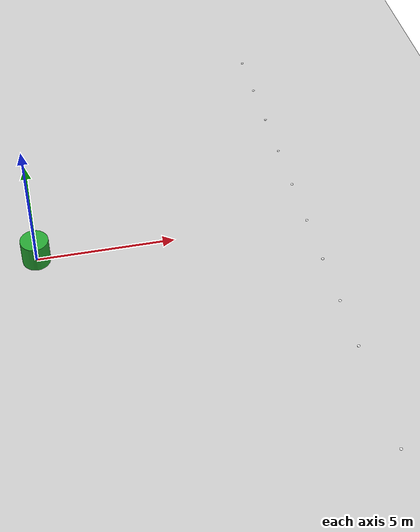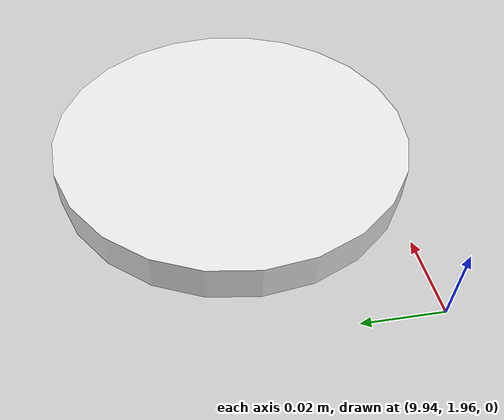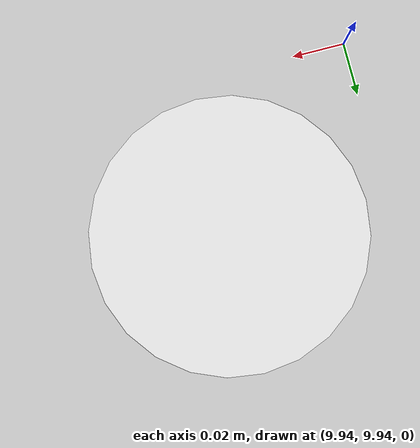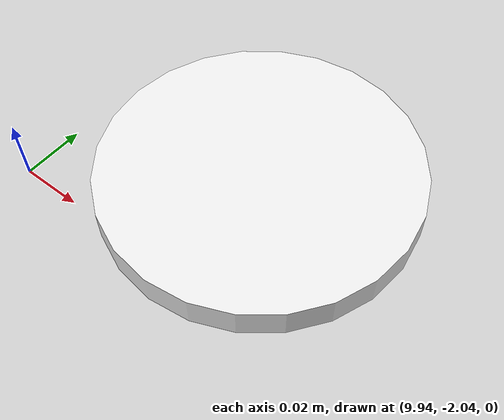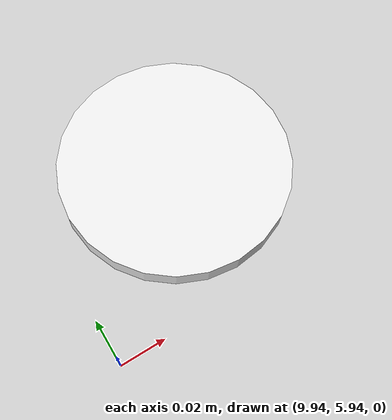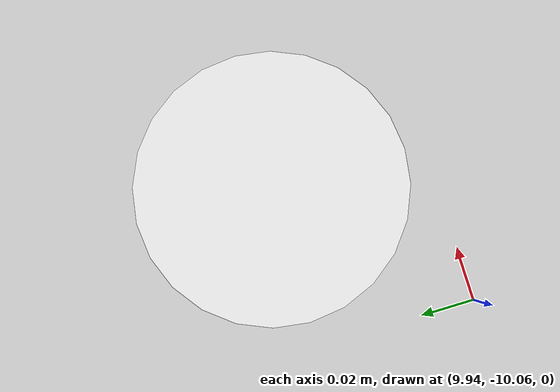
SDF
<?xml version="1.0" ?>
<sdf version="1.4">
  <world name="default">
    <!-- A global light source -->
    <include>
      <uri>model://sun</uri>
    </include>
    <!-- A ground plane -->
    <include>
      <uri>model://ground_plane</uri>
    </include>
    <!-- Own physics settings to speed up simulation -->
    <physics type='ode'>
      <max_step_size>0.01</max_step_size>
      <gravity>0 0 -9.8</gravity>
    </physics>

		<model name='obs_point_goal0'>
			<pose>10 10 0.005 0 0 0</pose>
			<link name='link'>
				<inertial>
					<mass>1</mass>
				</inertial>
				<visual name='visual'>
					<geometry>
						<cylinder>
								<radius>0.05</radius>
								<length>0.01</length>
						</cylinder>
					</geometry>
					<material>
						<script>
							<uri>file://media/materials/scripts/gazebo.material</uri>
							<name>Gazebo/White</name>
						</script>
					</material>
				</visual>
				<velocity_decay>
					<linear>0</linear>
					<angular>0</angular>
				</velocity_decay>
				<self_collide>0</self_collide>
				<kinematic>0</kinematic>
				<gravity>0</gravity>
			</link>
		</model>

		<model name='obs_point_goal1'>
			<pose>10 8 0.005 0 0 0</pose>
			<link name='link'>
				<inertial>
					<mass>1</mass>
				</inertial>
				<visual name='visual'>
					<geometry>
						<cylinder>
								<radius>0.05</radius>
								<length>0.01</length>
						</cylinder>
					</geometry>
					<material>
						<script>
							<uri>file://media/materials/scripts/gazebo.material</uri>
							<name>Gazebo/White</name>
						</script>
					</material>
				</visual>
				<velocity_decay>
					<linear>0</linear>
					<angular>0</angular>
				</velocity_decay>
				<self_collide>0</self_collide>
				<kinematic>0</kinematic>
				<gravity>0</gravity>
			</link>
		</model>

		<model name='obs_point_goal2'>
			<pose>10 6 0.005 0 0 0</pose>
			<link name='link'>
				<inertial>
					<mass>1</mass>
				</inertial>
				<visual name='visual'>
					<geometry>
						<cylinder>
								<radius>0.05</radius>
								<length>0.01</length>
						</cylinder>
					</geometry>
					<material>
						<script>
							<uri>file://media/materials/scripts/gazebo.material</uri>
							<name>Gazebo/White</name>
						</script>
					</material>
				</visual>
				<velocity_decay>
					<linear>0</linear>
					<angular>0</angular>
				</velocity_decay>
				<self_collide>0</self_collide>
				<kinematic>0</kinematic>
				<gravity>0</gravity>
			</link>
		</model>

		<model name='obs_point_goal3'>
			<pose>10 4 0.005 0 0 0</pose>
			<link name='link'>
				<inertial>
					<mass>1</mass>
				</inertial>
				<visual name='visual'>
					<geometry>
						<cylinder>
								<radius>0.05</radius>
								<length>0.01</length>
						</cylinder>
					</geometry>
					<material>
						<script>
							<uri>file://media/materials/scripts/gazebo.material</uri>
							<name>Gazebo/White</name>
						</script>
					</material>
				</visual>
				<velocity_decay>
					<linear>0</linear>
					<angular>0</angular>
				</velocity_decay>
				<self_collide>0</self_collide>
				<kinematic>0</kinematic>
				<gravity>0</gravity>
			</link>
		</model>

		<model name='obs_point_goal4'>
			<pose>10 2 0.005 0 0 0</pose>
			<link name='link'>
				<inertial>
					<mass>1</mass>
				</inertial>
				<visual name='visual'>
					<geometry>
						<cylinder>
								<radius>0.05</radius>
								<length>0.01</length>
						</cylinder>
					</geometry>
					<material>
						<script>
							<uri>file://media/materials/scripts/gazebo.material</uri>
							<name>Gazebo/White</name>
						</script>
					</material>
				</visual>
				<velocity_decay>
					<linear>0</linear>
					<angular>0</angular>
				</velocity_decay>
				<self_collide>0</self_collide>
				<kinematic>0</kinematic>
				<gravity>0</gravity>
			</link>
		</model>

		<model name='obs_point_goal5'>
			<pose>10 0 0.005 0 0 0</pose>
			<link name='link'>
				<inertial>
					<mass>1</mass>
				</inertial>
				<visual name='visual'>
					<geometry>
						<cylinder>
								<radius>0.05</radius>
								<length>0.01</length>
						</cylinder>
					</geometry>
					<material>
						<script>
							<uri>file://media/materials/scripts/gazebo.material</uri>
							<name>Gazebo/White</name>
						</script>
					</material>
				</visual>
				<velocity_decay>
					<linear>0</linear>
					<angular>0</angular>
				</velocity_decay>
				<self_collide>0</self_collide>
				<kinematic>0</kinematic>
				<gravity>0</gravity>
			</link>
		</model>

		<model name='obs_point_goal6'>
			<pose>10 -2 0.005 0 0 0</pose>
			<link name='link'>
				<inertial>
					<mass>1</mass>
				</inertial>
				<visual name='visual'>
					<geometry>
						<cylinder>
								<radius>0.05</radius>
								<length>0.01</length>
						</cylinder>
					</geometry>
					<material>
						<script>
							<uri>file://media/materials/scripts/gazebo.material</uri>
							<name>Gazebo/White</name>
						</script>
					</material>
				</visual>
				<velocity_decay>
					<linear>0</linear>
					<angular>0</angular>
				</velocity_decay>
				<self_collide>0</self_collide>
				<kinematic>0</kinematic>
				<gravity>0</gravity>
			</link>
		</model>

		<model name='obs_point_goal7'>
			<pose>10 -4 0.005 0 0 0</pose>
			<link name='link'>
				<inertial>
					<mass>1</mass>
				</inertial>
				<visual name='visual'>
					<geometry>
						<cylinder>
								<radius>0.05</radius>
								<length>0.01</length>
						</cylinder>
					</geometry>
					<material>
						<script>
							<uri>file://media/materials/scripts/gazebo.material</uri>
							<name>Gazebo/White</name>
						</script>
					</material>
				</visual>
				<velocity_decay>
					<linear>0</linear>
					<angular>0</angular>
				</velocity_decay>
				<self_collide>0</self_collide>
				<kinematic>0</kinematic>
				<gravity>0</gravity>
			</link>
		</model>

		<model name='obs_point_goal8'>
			<pose>10 -6 0.005 0 0 0</pose>
			<link name='link'>
				<inertial>
					<mass>1</mass>
				</inertial>
				<visual name='visual'>
					<geometry>
						<cylinder>
								<radius>0.05</radius>
								<length>0.01</length>
						</cylinder>
					</geometry>
					<material>
						<script>
							<uri>file://media/materials/scripts/gazebo.material</uri>
							<name>Gazebo/White</name>
						</script>
					</material>
				</visual>
				<velocity_decay>
					<linear>0</linear>
					<angular>0</angular>
				</velocity_decay>
				<self_collide>0</self_collide>
				<kinematic>0</kinematic>
				<gravity>0</gravity>
			</link>
		</model>

		<model name='obs_point_goal9'>
			<pose>10 -10 0.005 0 0 0</pose>
			<link name='link'>
				<inertial>
					<mass>1</mass>
				</inertial>
				<visual name='visual'>
					<geometry>
						<cylinder>
								<radius>0.05</radius>
								<length>0.01</length>
						</cylinder>
					</geometry>
					<material>
						<script>
							<uri>file://media/materials/scripts/gazebo.material</uri>
							<name>Gazebo/White</name>
						</script>
					</material>
				</visual>
				<velocity_decay>
					<linear>0</linear>
					<angular>0</angular>
				</velocity_decay>
				<self_collide>0</self_collide>
				<kinematic>0</kinematic>
				<gravity>0</gravity>
			</link>
		</model>

		<model name='point_goal'>
			<pose>0 0 0.5 0 0 0</pose>
			<link name='link'>
				<inertial>
					<mass>1</mass>
				</inertial>
				<visual name='visual'>
					<geometry>
						<cylinder>
								<radius>0.5</radius>
								<length>1.0</length>
						</cylinder>
					</geometry>
					<material>
						<script>
							<uri>file://media/materials/scripts/gazebo.material</uri>
							<name>Gazebo/Green</name>
						</script>
					</material>
				</visual>
				<velocity_decay>
					<linear>0</linear>
					<angular>0</angular>
				</velocity_decay>
				<self_collide>0</self_collide>
				<kinematic>0</kinematic>
				<gravity>0</gravity>
			</link>
		</model>
  </world>
</sdf>
